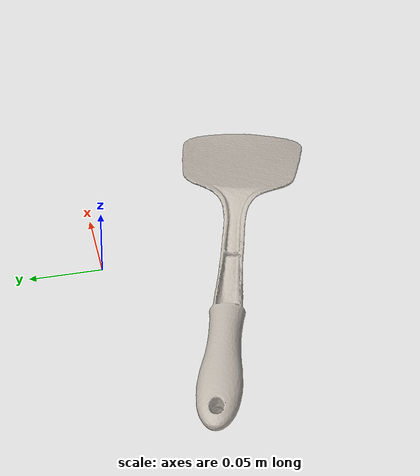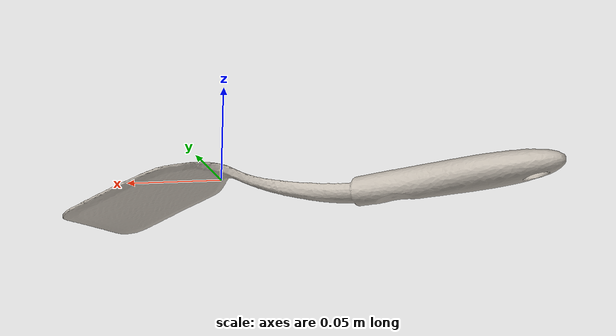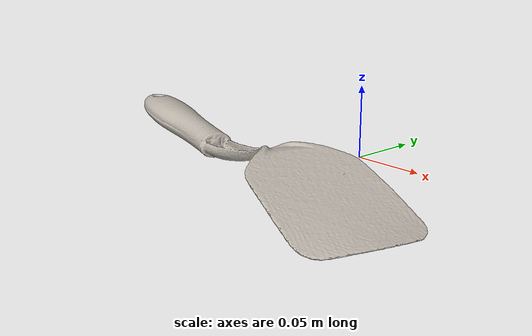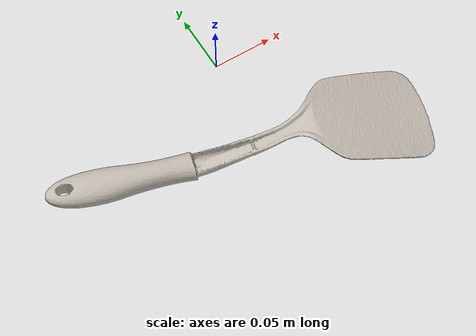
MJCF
<mujoco model="spatula">
  <compiler angle="radian" meshdir="assets" texturedir="assets"/>
    <default>
        <default class="ycb_col">
            <geom contype="1" conaffinity="1" group="3" rgba=".4 .5 .6 1"/>
        </default>
        <default class="ycb_viz">
            <geom contype="0" conaffinity="0" type="mesh" mass="0"/>
        </default>
    </default>
  <asset>
    <texture type="2d" name="spatula_tex" file="texture_map.png"/>
    <material name="spatula_mat" texture="spatula_tex" specular="0.5" shininess="0.5"/>
    <mesh file="textured.obj" name="spatula"/>
    <mesh file="textured_collision_0.obj" name="spatula_collision_0"/>
    <mesh file="textured_collision_1.obj" name="spatula_collision_1"/>
    <mesh file="textured_collision_2.obj" name="spatula_collision_2"/>
    <mesh file="textured_collision_3.obj" name="spatula_collision_3"/>
    <mesh file="textured_collision_4.obj" name="spatula_collision_4"/>
    <mesh file="textured_collision_5.obj" name="spatula_collision_5"/>
    <mesh file="textured_collision_6.obj" name="spatula_collision_6"/>
    <mesh file="textured_collision_7.obj" name="spatula_collision_7"/>
    <mesh file="textured_collision_8.obj" name="spatula_collision_8"/>
    <mesh file="textured_collision_9.obj" name="spatula_collision_9"/>
    <mesh file="textured_collision_10.obj" name="spatula_collision_10"/>
    <mesh file="textured_collision_11.obj" name="spatula_collision_11"/>
    <mesh file="textured_collision_12.obj" name="spatula_collision_12"/>
    <mesh file="textured_collision_13.obj" name="spatula_collision_13"/>
    <mesh file="textured_collision_14.obj" name="spatula_collision_14"/>
    <mesh file="textured_collision_15.obj" name="spatula_collision_15"/>
    <mesh file="textured_collision_16.obj" name="spatula_collision_16"/>
  </asset>
  <worldbody>
      <geom material="spatula_mat" mesh="spatula" class="ycb_viz"/>
      <geom mesh="spatula_collision_0" class="ycb_col" conaffinity="1" condim="4" friction="0.1 0.1 0.1" mass="0.01982220587029568" rgba="1 1 1 1" solimp="0.99 0.99 0.01" solref=".001 0.1" type="mesh" group="3"/>
      <geom mesh="spatula_collision_1" class="ycb_col" conaffinity="1" condim="4" friction="0.1 0.1 0.1" mass="0.0012730433099191708" rgba="1 1 1 1" solimp="0.99 0.99 0.01" solref=".001 0.1" type="mesh" group="3"/>
      <geom mesh="spatula_collision_2" class="ycb_col" conaffinity="1" condim="4" friction="0.1 0.1 0.1" mass="0.009465509727890238" rgba="1 1 1 1" solimp="0.99 0.99 0.01" solref=".001 0.1" type="mesh" group="3"/>
      <geom mesh="spatula_collision_3" class="ycb_col" conaffinity="1" condim="4" friction="0.1 0.1 0.1" mass="0.006500845858492708" rgba="1 1 1 1" solimp="0.99 0.99 0.01" solref=".001 0.1" type="mesh" group="3"/>
      <geom mesh="spatula_collision_4" class="ycb_col" conaffinity="1" condim="4" friction="0.1 0.1 0.1" mass="0.0005366387743851351" rgba="1 1 1 1" solimp="0.99 0.99 0.01" solref=".001 0.1" type="mesh" group="3"/>
      <geom mesh="spatula_collision_5" class="ycb_col" conaffinity="1" condim="4" friction="0.1 0.1 0.1" mass="0.00040576681149071274" rgba="1 1 1 1" solimp="0.99 0.99 0.01" solref=".001 0.1" type="mesh" group="3"/>
      <geom mesh="spatula_collision_6" class="ycb_col" conaffinity="1" condim="4" friction="0.1 0.1 0.1" mass="0.0008119246222845106" rgba="1 1 1 1" solimp="0.99 0.99 0.01" solref=".001 0.1" type="mesh" group="3"/>
      <geom mesh="spatula_collision_7" class="ycb_col" conaffinity="1" condim="4" friction="0.1 0.1 0.1" mass="0.0010732553388675978" rgba="1 1 1 1" solimp="0.99 0.99 0.01" solref=".001 0.1" type="mesh" group="3"/>
      <geom mesh="spatula_collision_8" class="ycb_col" conaffinity="1" condim="4" friction="0.1 0.1 0.1" mass="0.0049419529563180555" rgba="1 1 1 1" solimp="0.99 0.99 0.01" solref=".001 0.1" type="mesh" group="3"/>
      <geom mesh="spatula_collision_9" class="ycb_col" conaffinity="1" condim="4" friction="0.1 0.1 0.1" mass="0.0039001756270374503" rgba="1 1 1 1" solimp="0.99 0.99 0.01" solref=".001 0.1" type="mesh" group="3"/>
      <geom mesh="spatula_collision_10" class="ycb_col" conaffinity="1" condim="4" friction="0.1 0.1 0.1" mass="0.00043770981045705617" rgba="1 1 1 1" solimp="0.99 0.99 0.01" solref=".001 0.1" type="mesh" group="3"/>
      <geom mesh="spatula_collision_11" class="ycb_col" conaffinity="1" condim="4" friction="0.1 0.1 0.1" mass="0.0007169972215505198" rgba="1 1 1 1" solimp="0.99 0.99 0.01" solref=".001 0.1" type="mesh" group="3"/>
      <geom mesh="spatula_collision_12" class="ycb_col" conaffinity="1" condim="4" friction="0.1 0.1 0.1" mass="0.00014750990812046808" rgba="1 1 1 1" solimp="0.99 0.99 0.01" solref=".001 0.1" type="mesh" group="3"/>
      <geom mesh="spatula_collision_13" class="ycb_col" conaffinity="1" condim="4" friction="0.1 0.1 0.1" mass="0.00028507188598392763" rgba="1 1 1 1" solimp="0.99 0.99 0.01" solref=".001 0.1" type="mesh" group="3"/>
      <geom mesh="spatula_collision_14" class="ycb_col" conaffinity="1" condim="4" friction="0.1 0.1 0.1" mass="0.0001798729426973348" rgba="1 1 1 1" solimp="0.99 0.99 0.01" solref=".001 0.1" type="mesh" group="3"/>
      <geom mesh="spatula_collision_15" class="ycb_col" conaffinity="1" condim="4" friction="0.1 0.1 0.1" mass="0.0006491840328327421" rgba="1 1 1 1" solimp="0.99 0.99 0.01" solref=".001 0.1" type="mesh" group="3"/>
      <geom mesh="spatula_collision_16" class="ycb_col" conaffinity="1" condim="4" friction="0.1 0.1 0.1" mass="0.0003523353013766874" rgba="1 1 1 1" solimp="0.99 0.99 0.01" solref=".001 0.1" type="mesh" group="3"/>
  </worldbody>
</mujoco>
